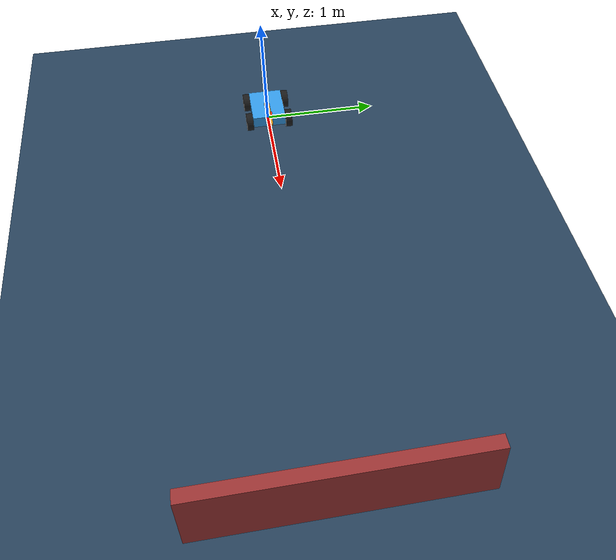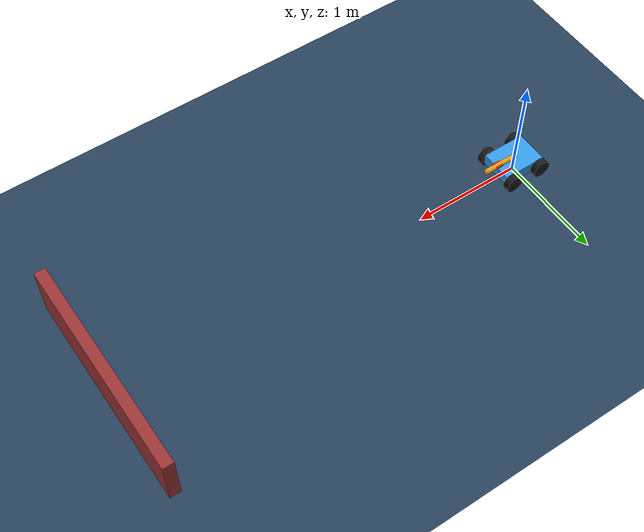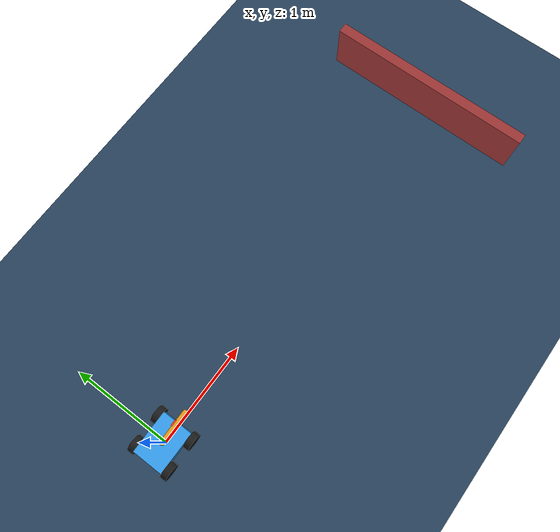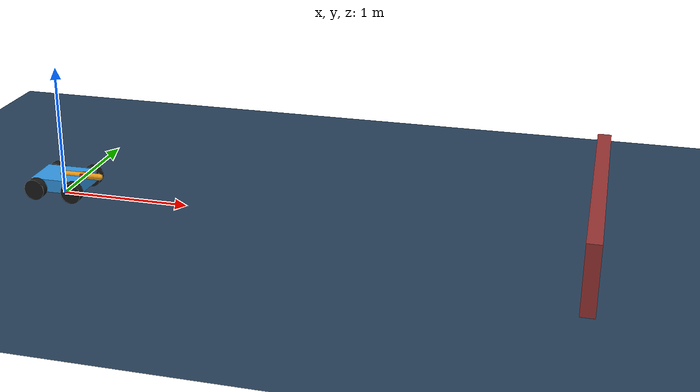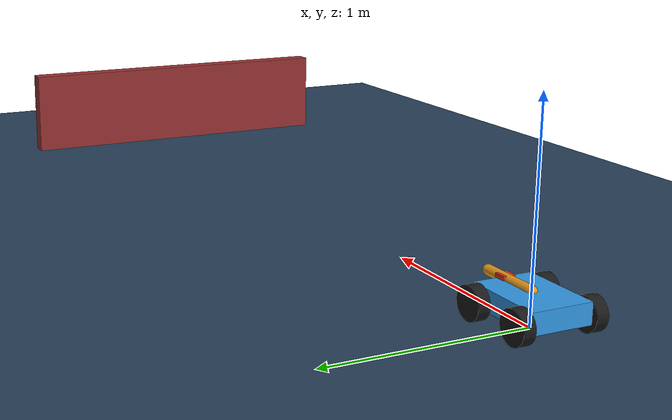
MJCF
<mujoco model="mobile_base_scene">
  <include file="../mobile_base/mobile_base.xml"/>

  <statistic center="0 0 0.3" extent="5"/>

  <visual>
    <headlight diffuse="0.6 0.6 0.6" ambient="0.1 0.1 0.1" specular="0 0 0"/>
    <rgba haze="0.15 0.25 0.35 1"/>
    <global azimuth="120" elevation="-20"/>
  </visual>

  <asset>
    <texture type="skybox" builtin="gradient" rgb1="0.3 0.5 0.7" rgb2="0 0 0" width="512" height="3072"/>
    <texture type="2d" name="groundplane" builtin="checker" mark="edge" rgb1="0.2 0.3 0.4" rgb2="0.1 0.2 0.3"
      markrgb="0.8 0.8 0.8" width="300" height="300"/>
    <material name="groundplane" texture="groundplane" texuniform="true" texrepeat="5 5"/>
  </asset>

  <worldbody>
    <light pos="0 0 1.5" dir="0 0 -1" directional="true"/>
    <geom conaffinity="1" contype="1" material="groundplane" name="floor" pos="0 0 0" size="0 0 0.01" type="plane"
          friction="0 0 0"/>
    <geom name="wall" type="box" pos="4.0 0 0.25" size="0.05 1.0 0.25" rgba="0.6 0.2 0.2 1"/>
  </worldbody>
</mujoco>

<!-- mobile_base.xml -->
<mujoco model="mobile_base">
  <worldbody>
    <body name="base_link" pos="0 0 0.11">
      <freejoint name="floating_base_joint"/>
      <inertial pos="0 0 0" mass="20.0" diaginertia="0.1667 0.2833 0.4167"/>
      <!-- Chassis: doesn't touch the ground (the wheels below reach lower and take the floor
           contact instead), but still collides normally with the wall obstacle. -->
      <geom name="chassis" type="box" size="0.2 0.15 0.05" rgba="0.2 0.6 0.9 1"/>
      <!-- Forward-direction marker (cosmetic only, no collision) -->
      <geom name="heading_marker" type="box" size="0.03 0.03 0.01" pos="0.18 0 0.06" rgba="0.9 0.2 0.1 1"
            contype="0" conaffinity="0"/>
      <geom name="wheel_fl" type="cylinder" size="0.08 0.03" pos="0.15 0.18 -0.02" quat="0.7071068 0.7071068 0 0"
            rgba="0.1 0.1 0.1 1" friction="0 0 0"/>
      <geom name="wheel_fr" type="cylinder" size="0.08 0.03" pos="0.15 -0.18 -0.02" quat="0.7071068 0.7071068 0 0"
            rgba="0.1 0.1 0.1 1" friction="0 0 0"/>
      <geom name="wheel_rl" type="cylinder" size="0.08 0.03" pos="-0.15 0.18 -0.02" quat="0.7071068 0.7071068 0 0"
            rgba="0.1 0.1 0.1 1" friction="0 0 0"/>
      <geom name="wheel_rr" type="cylinder" size="0.08 0.03" pos="-0.15 -0.18 -0.02" quat="0.7071068 0.7071068 0 0"
            rgba="0.1 0.1 0.1 1" friction="0 0 0"/>
      <body name="arm_link" pos="0 0 0.05">
        <joint name="arm_joint" type="hinge" axis="0 1 0" pos="0 0 0" range="-0.7 0.7" limited="true"/>
        <inertial pos="0.15 0 0" mass="2.0" diaginertia="0.001 0.02 0.02"/>
        <geom name="arm_geom" type="capsule" fromto="0 0 0 0.3 0 0" size="0.025" rgba="0.9 0.6 0.1 1"/>
      </body>
    </body>
  </worldbody>
  <actuator>
    <position name="arm_joint" joint="arm_joint" kp="200" ctrlrange="-0.7 0.7"/>
  </actuator>
</mujoco>
